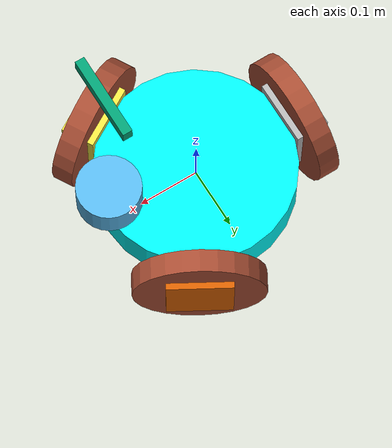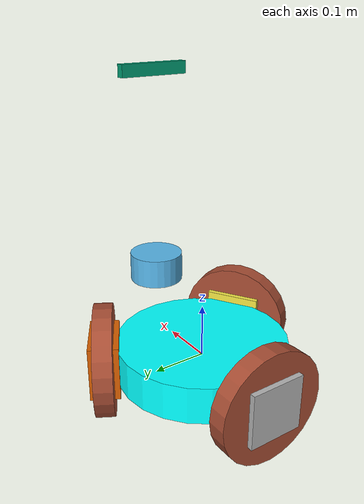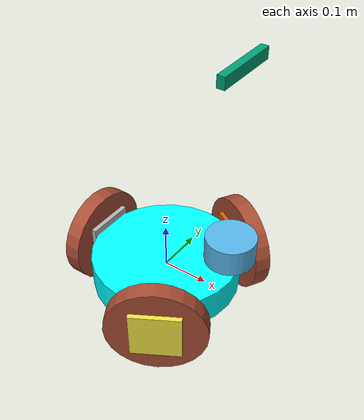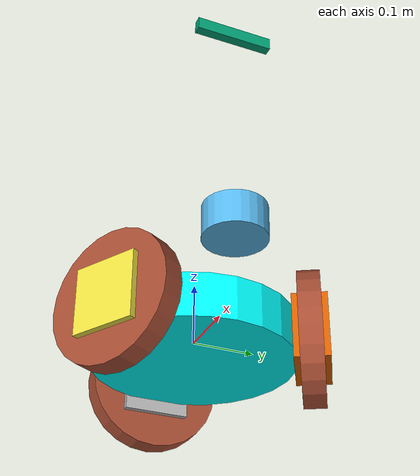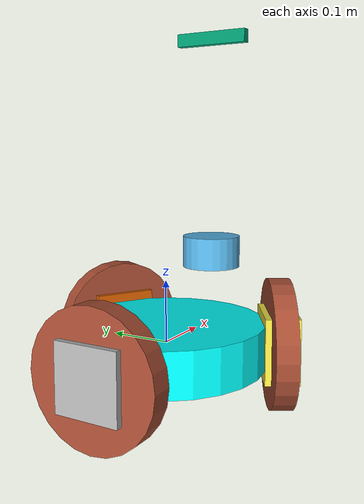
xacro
<?xml version="1.0"?>
<robot xmlns:xacro="http://www.ros.org/wiki/xacro" name="zuuu">
  <xacro:arg name="prefix" default=""/>

  <xacro:arg name="model" default="" />

  <xacro:arg name="use_gazebo" default="true"/>
  <xacro:arg name="use_fake_components" default="false"/>
  <xacro:arg name="use_fixed_wheels" default="true"/>
  <xacro:arg name="use_ros_control" default="true"/>

  <!-- Import zuuu macro -->
  <xacro:include filename="$(find zuuu_description)/urdf/zuuu_description.urdf.xacro"/>

  <!-- Import Gazebo macro -->
  <xacro:include filename="$(find zuuu_description)/urdf/zuuu.gazebo.xacro"/>

  <!-- Import Zuuu ros2_control description -->
  <xacro:include filename="$(find zuuu_description)/urdf/zuuu.ros2_control.xacro"/>

  <xacro:zuuu
    model="$(arg model)" prefix="$(arg prefix)">
  </xacro:zuuu>

  <xacro:if value="$(arg use_gazebo)">
    <xacro:zuuu_gazebo model="$(arg model)" prefix="$(arg prefix)" />
  </xacro:if>

  <xacro:zuuu_ros2_control
    model="$(arg model)"
    prefix="$(arg prefix)"/>
</robot>

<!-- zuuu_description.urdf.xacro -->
<robot name="zuuu" xmlns:xacro="http://ros.org/wiki/xacro">

  <xacro:macro name="zuuu" params="model prefix">

    <!-- Define robot constants -->
    <xacro:property name="base_radius" value="0.16"/>
    <xacro:property name="base_top_height" value="0.1425"/>
    <xacro:property name="base_depth" value="0.07"/>

    <xacro:property name="wheel_radius" value="0.105"/>
    <xacro:property name="wheel_width" value="0.035"/>
    <xacro:property name="wheel_radial_dist" value="0.1805"/>
    <xacro:property name="wheel_zoff" value="0.20"/>
    <xacro:property name="global_damping" value="0.5"/>
    <xacro:property name="global_friction" value="0.1"/>

    <!-- Define some commonly used intertial properties  -->
    <xacro:macro name="box_inertia" params="m w h d">
      <inertial>
        <origin xyz="0 0 0" rpy="${pi/2} 0 ${pi/2}"/>
        <mass value="${m}"/>
        <inertia ixx="${(m/12) * (h*h + d*d)}" ixy="0.0" ixz="0.0" iyy="${(m/12) * (w*w + d*d)}" iyz="0.0" izz="${(m/12) * (w*w + h*h)}"/>
      </inertial>
    </xacro:macro>

    <xacro:macro name="cylinder_inertia" params="m r h">
      <inertial>
        <origin xyz="0 0 0" rpy="${pi/2} 0 0" />
        <mass value="${m}"/>
        <inertia ixx="${(m/12) * (3*r*r + h*h)}" ixy = "0" ixz = "0" iyy="${(m/12) * (3*r*r + h*h)}" iyz = "0" izz="${(m/2) * (r*r)}"/>
      </inertial>
    </xacro:macro>

    <xacro:macro name="sphere_inertia" params="m r">
      <inertial>
        <mass value="${m}"/>
        <inertia ixx="${(2/5) * m * (r*r)}" ixy="0.0" ixz="0.0" iyy="${(2/5) * m * (r*r)}" iyz="0.0" izz="${(2/5) * m * (r*r)}"/>
      </inertial>
    </xacro:macro>

    <!-- Robot Footprint -->
    <link name="base_footprint"/>

    <joint name="base_footprint_joint" type="fixed">
      <origin rpy="0 0 0" xyz="0 0 0"/>
      <axis xyz="0 0 ${(base_top_height-base_depth/2)}"/>
      <parent link="base_footprint"/>
      <child link="base_link"/>
    </joint>

    <!-- Robot Base -->
    <link name="base_link">
      <visual>
        <geometry>
          <cylinder radius="${base_radius}" length="${base_depth}"/>
        </geometry>
        <material name="Cyan">
          <color rgba="0 1.0 1.0 1.0"/>
        </material>
      </visual>

      <collision>
        <geometry>
          <cylinder radius="${base_radius}" length="${base_depth}"/>
        </geometry>
      </collision>

      <xacro:cylinder_inertia m="20" r="${base_radius}" h="${base_depth}"/>
    </link>

    <!-- Wheels -->
    <xacro:macro name="wheel" params="prefix yaw_angle">
      <link name="${prefix}_link">
        <visual>
          <origin xyz="0 0 0" rpy="${pi/2} 0 0"/>
          <geometry>
              <cylinder radius="${wheel_radius}" length="${wheel_width}"/>
              <box size="${wheel_radius} ${wheel_radius} ${wheel_width+0.02}"/>
          </geometry>
          <material name="Bricks"></material>
        </visual>

        <collision>
          <origin xyz="0 0 0" rpy="${pi/2} 0 0"/>
          <geometry>
            <cylinder radius="${wheel_radius}" length="${wheel_width}"/>
          </geometry>
        </collision>

        <xacro:cylinder_inertia m="0.5" r="${wheel_radius}" h="${wheel_width}"/>
      </link>

      <xacro:if value="$(arg use_fixed_wheels)">
          <joint name="${prefix}_joint" type="fixed">
            <parent link="base_link"/>
            <child link="${prefix}_link"/>
            <origin xyz="${wheel_radial_dist*cos(yaw_angle)} ${-wheel_radial_dist*sin(yaw_angle)} ${-((base_top_height-base_depth/2)- wheel_radius)}" rpy="0 0 ${pi/2-yaw_angle}"/>
            <axis xyz="0 1 0"/>
            <joint_properties damping="${global_damping}" friction="${global_friction}"/>
          </joint>
          <!-- No friction because we suck and everything is lame -->
          <gazebo reference="${prefix}_link">
            <mu1 value="0.0"/>
            <mu2 value="0.0"/>
            <kp value="10000000.0" />
            <kd value="1.0" />
            <fdir1 value="1 0 0"/>
            <maxVel>1.0</maxVel>
            <minDepth>0.0</minDepth>
            <turnGravityOff>false</turnGravityOff>
          </gazebo>
      </xacro:if>

      <xacro:unless value="$(arg use_fixed_wheels)">
        <joint name="${prefix}_joint" type="continuous">
          <parent link="base_link"/>
          <child link="${prefix}_link"/>
          <origin xyz="${wheel_radial_dist*cos(yaw_angle)} ${-wheel_radial_dist*sin(yaw_angle)} ${-((base_top_height-base_depth/2)- wheel_radius)}" rpy="0 0 ${pi/2-yaw_angle}"/>
          <axis xyz="0 1 0"/>
          <joint_properties damping="${global_damping}" friction="${global_friction}"/>
        </joint>
        <!-- Physics because we're smart and handsome -->
        <gazebo reference="${prefix}_link">
          <mu1 value="1.0"/>
          <mu2 value="0.0"/>
          <kp value="10000000.0" />
          <kd value="1.0" />
          <fdir1 value="1 0 0"/>
          <maxVel>5.0</maxVel>
          <minDepth>0.002</minDepth>
          <turnGravityOff>false</turnGravityOff>
        </gazebo>
      </xacro:unless>

      <!-- Just so that we can see the wheels turn when they turn -->
      <link name="${prefix}_extra_link">
        <visual>
          <origin xyz="0 0 0" rpy="${pi/2} 0 0"/>
          <geometry>
              <box size="${wheel_radius} ${wheel_radius} ${wheel_width+0.02}"/>
          </geometry>
        </visual>
      </link>
      <joint name="${prefix}_extra_joint" type="fixed">
        <origin rpy="0 0 0" xyz="0 0 0"/>
        <axis xyz="0 0 0"/>
        <parent link="${prefix}_link"/>
        <child link="${prefix}_extra_link"/>
      </joint>

    </xacro:macro>

    <!-- Wheel 1 at the back, 2 on the right, 3 on the left -->
    <xacro:wheel prefix="drivewhl1" yaw_angle="${pi/3}" />
    <xacro:wheel prefix="drivewhl2" yaw_angle="${5*pi/3}" />
    <xacro:wheel prefix="drivewhl3" yaw_angle="${pi}" />

    <link name="imu_link">
      <visual>
        <geometry>
          <box size="0.1 0.1 0.02"/>
        </geometry>
      </visual>

      <collision>
        <geometry>
          <box size="0.1 0.1 0.1"/>
        </geometry>
      </collision>

      <xacro:box_inertia m="0.1" w="0.1" d="0.1" h="0.1"/>
    </link>

    <joint name="imu_joint" type="fixed">
      <parent link="base_link"/>
      <child link="imu_link"/>
      <origin xyz="0 0 0.01"/>
    </joint>

    <link name="lidar_link">
      <inertial>
        <origin xyz="0 0 0" rpy="0 0 0"/>
        <mass value="0.125"/>
        <inertia ixx="0.001"  ixy="0"  ixz="0" iyy="0.001" iyz="0" izz="0.001" />
      </inertial>

      <collision>
        <origin xyz="0 0 0" rpy="0 0 0"/>
        <geometry>
          <cylinder radius="0.0508" length="0.055"/>
        </geometry>
      </collision>

      <visual>
        <origin xyz="0 0 0" rpy="0 0 0"/>
        <geometry>
          <cylinder radius="0.0508" length="0.055"/>
        </geometry>
      </visual>
    </link>

    <joint name="lidar_joint" type="fixed">
      <parent link="base_link"/>
      <child link="lidar_link"/>
      <!-- The -0.0129 were added on 22 pril 2022 for the second version of Zuuu. The 2mm pads are not taken into account -->
      <origin xyz="0.155 0 ${-(base_top_height-base_depth/2)+base_top_height+0.105 -0.0129}" rpy="0 0 0"/>
    </joint>

    <link name="camera_link">
      <visual>
        <origin xyz="0 0 0" rpy="0 0 0"/>
        <geometry>
          <box size="0.015 0.130 0.022"/>
        </geometry>
      </visual>

      <collision>
        <origin xyz="0 0 0" rpy="0 0 0"/>
        <geometry>
          <box size="0.015 0.130 0.022"/>
        </geometry>
      </collision>

      <inertial>
        <origin xyz="0 0 0" rpy="0 0 0"/>
        <mass value="0.035"/>
        <inertia ixx="0.001"  ixy="0"  ixz="0" iyy="0.001" iyz="0" izz="0.001" />
      </inertial>
    </link>

    <joint name="camera_joint" type="fixed">
      <parent link="base_link"/>
      <child link="camera_link"/>
      <origin xyz="0.155 0 0.5" rpy="0 0 0"/>
    </joint>

    <link name="camera_depth_frame"/>

    <joint name="camera_depth_joint" type="fixed">
      <origin xyz="0 0 0" rpy="${-pi/2} 0 ${-pi/2}"/>
      <parent link="camera_link"/>
      <child link="camera_depth_frame"/>
    </joint>

  </xacro:macro>
</robot>
